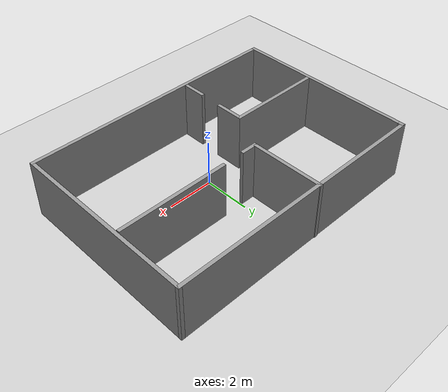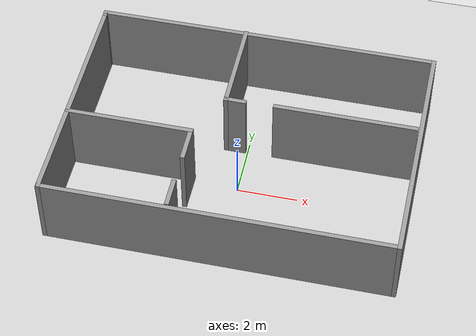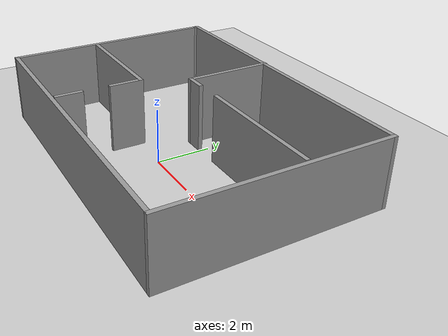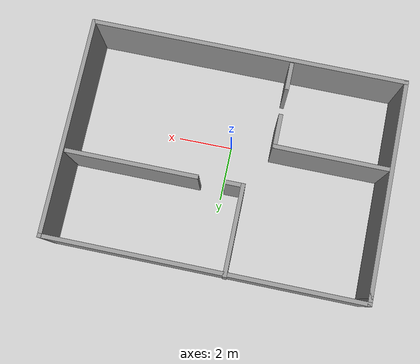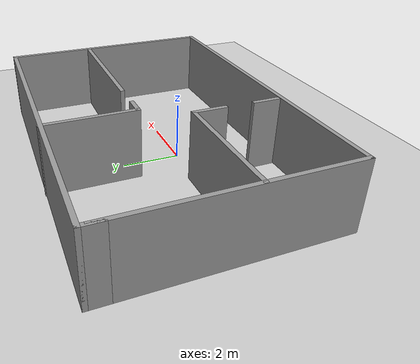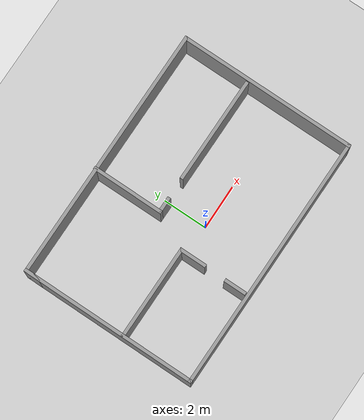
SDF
<sdf version="1.6">
 <world name="default">
  <light name="sun" type="directional">
   <pose>0 0 10 0 -0 0</pose>
   <diffuse>0.8 0.8 0.8 1</diffuse>
   <specular>0.2 0.2 0.2 1</specular>
   <attenuation>
    <range>1000</range>
    <constant>0.9</constant>
    <linear>0.01</linear>
    <quadratic>0.001</quadratic>
   </attenuation>
   <direction>-0.5 0.1 -0.9</direction>
  </light>
  <model name="ground_plane">
   <static>1</static>
   <link name="link">
    <collision name="collision">
     <geometry><plane><normal>0 0 1</normal><size>100 100</size></plane></geometry>
     <surface>
      <contact><collide_bitmask>65535</collide_bitmask></contact>
      <friction><ode><mu>100</mu><mu2>50</mu2></ode></friction>
     </surface>
    </collision>
    <visual name="visual">
     <cast_shadows>0</cast_shadows>
     <geometry><plane><normal>0 0 1</normal><size>100 100</size></plane></geometry>
     <material>
      <script><uri>file://media/materials/scripts/gazebo.material</uri><name>Gazebo/Grey</name></script>
     </material>
    </visual>
   </link>
  </model>
  <gravity>0 0 -9.8</gravity>
  <magnetic_field>6e-06 2.3e-05 -4.2e-05</magnetic_field>
  <atmosphere type="adiabatic"/>
  <physics name="default_physics" default="0" type="ode">
   <max_step_size>0.001</max_step_size>
   <real_time_factor>1</real_time_factor>
   <real_time_update_rate>1000</real_time_update_rate>
  </physics>
  <scene><ambient>0.4 0.4 0.4 1</ambient><background>0.7 0.7 0.7 1</background><shadows>1</shadows></scene>
  <audio><device>default</device></audio>
  <spherical_coordinates>
   <surface_model>EARTH_WGS84</surface_model>
   <latitude_deg>0</latitude_deg>
   <longitude_deg>0</longitude_deg>
   <elevation>0</elevation>
   <heading_deg>0</heading_deg>
  </spherical_coordinates>
  <model name="model1">
   <pose>0.002792 0.863861 0 0 -0 0</pose>
   <link name="Wall_0">
    <collision name="Wall_0_Collision">
     <geometry><box><size>7.75 0.15 2.5</size></box></geometry>
     <pose>0 0 1.25 0 -0 0</pose>
    </collision>
    <visual name="Wall_0_Visual">
     <pose>0 0 1.25 0 -0 0</pose>
     <geometry><box><size>7.75 0.15 2.5</size></box></geometry>
     <material>
      <script><uri>file://media/materials/scripts/gazebo.material</uri><name>Gazebo/Grey</name></script>
      <ambient>1 1 1 1</ambient>
     </material>
     <meta><layer>0</layer></meta>
    </visual>
    <pose>-5.675 -0.138784 0 0 -0 -1.5708</pose>
   </link>
   <link name="Wall_1">
    <collision name="Wall_1_Collision">
     <geometry><box><size>11.5 0.15 2.5</size></box></geometry>
     <pose>0 0 1.25 0 -0 0</pose>
    </collision>
    <visual name="Wall_1_Visual">
     <pose>0 0 1.25 0 -0 0</pose>
     <geometry><box><size>11.5 0.15 2.5</size></box></geometry>
     <material>
      <script><uri>file://media/materials/scripts/gazebo.material</uri><name>Gazebo/Grey</name></script>
      <ambient>1 1 1 1</ambient>
     </material>
     <meta><layer>0</layer></meta>
    </visual>
    <pose>0 -3.93878 0 0 -0 0</pose>
   </link>
   <link name="Wall_11">
    <collision name="Wall_11_Collision">
     <geometry><box><size>3.25 0.15 2.5</size></box></geometry>
     <pose>0 0 1.25 0 -0 0</pose>
    </collision>
    <visual name="Wall_11_Visual">
     <pose>0 0 1.25 0 -0 0</pose>
     <geometry><box><size>3.25 0.15 2.5</size></box></geometry>
     <material>
      <script><uri>file://media/materials/scripts/gazebo.material</uri><name>Gazebo/Grey</name></script>
      <ambient>1 1 1 1</ambient>
     </material>
     <meta><layer>0</layer></meta>
    </visual>
    <pose>-0.748181 2.38878 0 0 -0 -1.5708</pose>
   </link>
   <link name="Wall_12">
    <collision name="Wall_12_Collision">
     <geometry><box><size>0.75 0.15 2.5</size></box></geometry>
     <pose>0 0 1.25 0 -0 0</pose>
    </collision>
    <visual name="Wall_12_Visual">
     <pose>0 0 1.25 0 -0 0</pose>
     <geometry><box><size>0.75 0.15 2.5</size></box></geometry>
     <material>
      <script><uri>file://media/materials/scripts/gazebo.material</uri><name>Gazebo/Grey</name></script>
      <ambient>1 1 1 1</ambient>
     </material>
     <meta><layer>0</layer></meta>
    </visual>
    <pose>-0.448181 0.838784 0 0 -0 0</pose>
   </link>
   <link name="Wall_14">
    <collision name="Wall_14_Collision">
     <geometry><box><size>4.75 0.15 2.5</size></box></geometry>
     <pose>0 0 1.25 0 -0 0</pose>
    </collision>
    <visual name="Wall_14_Visual">
     <pose>0 0 1.25 0 -0 0</pose>
     <geometry><box><size>4.75 0.15 2.5</size></box></geometry>
     <material>
      <script><uri>file://media/materials/scripts/gazebo.material</uri><name>Gazebo/Grey</name></script>
      <ambient>1 1 1 1</ambient>
     </material>
     <meta><layer>0</layer></meta>
    </visual>
    <pose>3.19409 0.862413 0 0 -0 0</pose>
   </link>
   <link name="Wall_2">
    <collision name="Wall_2_Collision">
     <geometry><box><size>8 0.15 2.5</size></box></geometry>
     <pose>0 0 1.25 0 -0 0</pose>
    </collision>
    <visual name="Wall_2_Visual">
     <pose>0 0 1.25 0 -0 0</pose>
     <geometry><box><size>8 0.15 2.5</size></box></geometry>
     <material>
      <script><uri>file://media/materials/scripts/gazebo.material</uri><name>Gazebo/Grey</name></script>
      <ambient>1 1 1 1</ambient>
     </material>
     <meta><layer>0</layer></meta>
    </visual>
    <pose>5.675 -0.013784 0 0 -0 1.5708</pose>
   </link>
   <link name="Wall_3">
    <collision name="Wall_3_Collision">
     <geometry><box><size>11.5 0.15 2.5</size></box></geometry>
     <pose>0 0 1.25 0 -0 0</pose>
    </collision>
    <visual name="Wall_3_Visual">
     <pose>0 0 1.25 0 -0 0</pose>
     <geometry><box><size>11.5 0.15 2.5</size></box></geometry>
     <material>
      <script><uri>file://media/materials/scripts/gazebo.material</uri><name>Gazebo/Grey</name></script>
      <ambient>1 1 1 1</ambient>
     </material>
     <meta><layer>0</layer></meta>
    </visual>
    <pose>0 3.91122 0 0 -0 3.14159</pose>
   </link>
   <link name="Wall_4">
    <collision name="Wall_4_Collision">
     <geometry><box><size>0.75 0.15 2.5</size></box></geometry>
     <pose>0 0 1.25 0 -0 0</pose>
    </collision>
    <visual name="Wall_4_Visual">
     <pose>0 0 1.25 0 -0 0</pose>
     <geometry><box><size>0.75 0.15 2.5</size></box></geometry>
     <material>
      <script><uri>file://media/materials/scripts/gazebo.material</uri><name>Gazebo/Grey</name></script>
      <ambient>1 1 1 1</ambient>
     </material>
     <meta><layer>0</layer></meta>
    </visual>
    <pose>-5.675 3.61122 0 0 -0 -1.5708</pose>
   </link>
   <link name="Wall_6">
    <collision name="Wall_6_Collision">
     <geometry><box><size>4.25 0.15 2.5</size></box></geometry>
     <pose>0 0 1.25 0 -0 0</pose>
    </collision>
    <visual name="Wall_6_Visual">
     <pose>0 0 1.25 0 -0 0</pose>
     <geometry><box><size>4.25 0.15 2.5</size></box></geometry>
     <material>
      <script><uri>file://media/materials/scripts/gazebo.material</uri><name>Gazebo/Grey</name></script>
      <ambient>1 1 1 1</ambient>
     </material>
     <meta><layer>0</layer></meta>
    </visual>
    <pose>-3.60187 -0.733599 0 0 -0 0</pose>
   </link>
   <link name="Wall_7">
    <collision name="Wall_7_Collision">
     <geometry><box><size>1.25 0.15 2.5</size></box></geometry>
     <pose>0 0 1.25 0 -0 0</pose>
    </collision>
    <visual name="Wall_7_Visual">
     <pose>0 0 1.25 0 -0 0</pose>
     <geometry><box><size>1.25 0.15 2.5</size></box></geometry>
     <material>
      <script><uri>file://media/materials/scripts/gazebo.material</uri><name>Gazebo/Grey</name></script>
      <ambient>1 1 1 1</ambient>
     </material>
     <meta><layer>0</layer></meta>
    </visual>
    <pose>-1.55187 -1.2836 0 0 -0 -1.5708</pose>
   </link>
   <link name="Wall_9">
    <collision name="Wall_9_Collision">
     <geometry><box><size>1 0.15 2.5</size></box></geometry>
     <pose>0 0 1.25 0 -0 0</pose>
    </collision>
    <visual name="Wall_9_Visual">
     <pose>0 0 1.25 0 -0 0</pose>
     <geometry><box><size>1 0.15 2.5</size></box></geometry>
     <material>
      <script><uri>file://media/materials/scripts/gazebo.material</uri><name>Gazebo/Grey</name></script>
      <ambient>1 1 1 1</ambient>
     </material>
     <meta><layer>0</layer></meta>
    </visual>
    <pose>-1.58088 -3.33871 0 0 -0 1.5708</pose>
   </link>
   <static>1</static>
  </model>
 </world>
</sdf>
